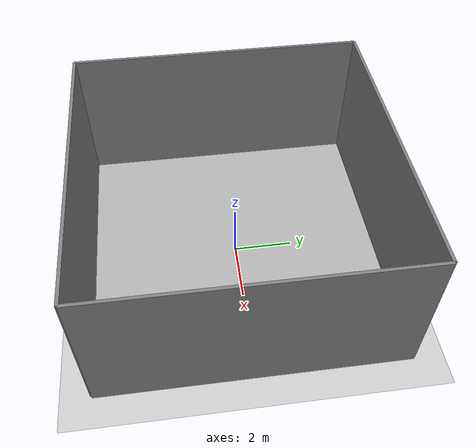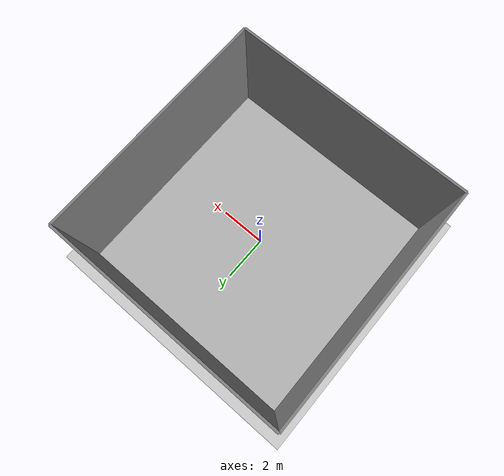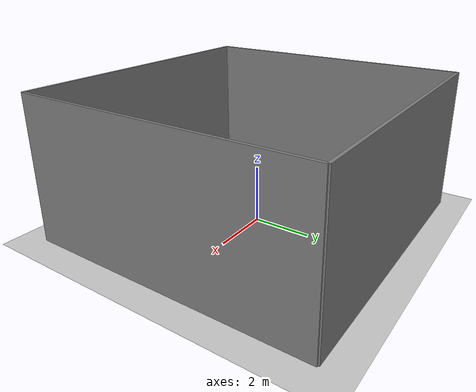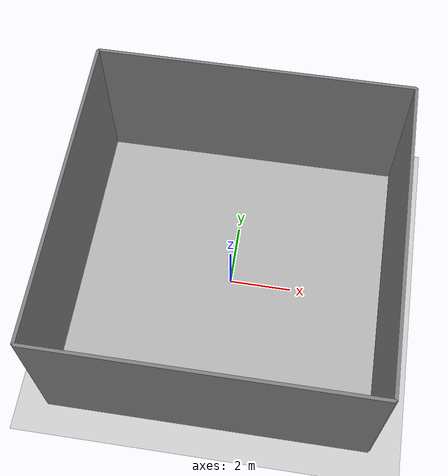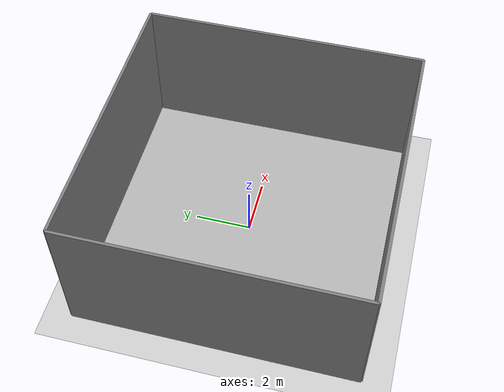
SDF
<?xml version="1.0" ?>
<sdf version="1.6">
  <world name="simple_room">
    <!-- Include the default Gazebo world -->
    <include>
      <uri>model://ground_plane</uri>
    </include>

    <include>
      <uri>model://sun</uri>
    </include>

    <!-- Physics parameters -->
    <physics name="1ms" type="ode">
      <max_step_size>0.001</max_step_size>
      <real_time_factor>1.0</real_time_factor>
      <real_time_update_rate>1000.0</real_time_update_rate>
      <gravity>0 0 -9.8</gravity>
    </physics>

    <!-- A simple room with walls -->
    <!-- Floor -->
    <model name="floor">
      <pose>0 0 0 0 0 0</pose>
      <link name="floor_link">
        <collision name="floor_collision">
          <geometry>
            <box>
              <size>10 10 0.1</size>
            </box>
          </geometry>
        </collision>
        <visual name="floor_visual">
          <geometry>
            <box>
              <size>10 10 0.1</size>
            </box>
          </geometry>
          <material>
            <ambient>0.7 0.7 0.7 1</ambient>
            <diffuse>0.7 0.7 0.7 1</diffuse>
            <specular>0.0 0.0 0.0 1</specular>
          </material>
        </visual>
        <inertial>
          <mass>1e6</mass>
          <inertia>
            <ixx>1e6</ixx>
            <ixy>0</ixy>
            <ixz>0</ixz>
            <iyy>1e6</iyy>
            <iyz>0</iyz>
            <izz>1e6</izz>
          </inertia>
        </inertial>
      </link>
    </model>

    <!-- Walls -->
    <model name="wall_1">
      <pose>-5 0 2.5 0 0 0</pose>
      <link name="wall_1_link">
        <collision name="wall_1_collision">
          <geometry>
            <box>
              <size>0.1 10 5</size>
            </box>
          </geometry>
        </collision>
        <visual name="wall_1_visual">
          <geometry>
            <box>
              <size>0.1 10 5</size>
            </box>
          </geometry>
          <material>
            <ambient>0.5 0.5 0.5 1</ambient>
            <diffuse>0.5 0.5 0.5 1</diffuse>
            <specular>0.0 0.0 0.0 1</specular>
          </material>
        </visual>
        <inertial>
          <mass>1e6</mass>
          <inertia>
            <ixx>1e6</ixx>
            <ixy>0</ixy>
            <ixz>0</ixz>
            <iyy>1e6</iyy>
            <iyz>0</iyz>
            <izz>1e6</izz>
          </inertia>
        </inertial>
      </link>
    </model>

    <model name="wall_2">
      <pose>5 0 2.5 0 0 0</pose>
      <link name="wall_2_link">
        <collision name="wall_2_collision">
          <geometry>
            <box>
              <size>0.1 10 5</size>
            </box>
          </geometry>
        </collision>
        <visual name="wall_2_visual">
          <geometry>
            <box>
              <size>0.1 10 5</size>
            </box>
          </geometry>
          <material>
            <ambient>0.5 0.5 0.5 1</ambient>
            <diffuse>0.5 0.5 0.5 1</diffuse>
            <specular>0.0 0.0 0.0 1</specular>
          </material>
        </visual>
        <inertial>
          <mass>1e6</mass>
          <inertia>
            <ixx>1e6</ixx>
            <ixy>0</ixy>
            <ixz>0</ixz>
            <iyy>1e6</iyy>
            <iyz>0</iyz>
            <izz>1e6</izz>
          </inertia>
        </inertial>
      </link>
    </model>

    <model name="wall_3">
      <pose>0 -5 2.5 0 0 1.5707</pose>
      <link name="wall_3_link">
        <collision name="wall_3_collision">
          <geometry>
            <box>
              <size>0.1 10 5</size>
            </box>
          </geometry>
        </collision>
        <visual name="wall_3_visual">
          <geometry>
            <box>
              <size>0.1 10 5</size>
            </box>
          </geometry>
          <material>
            <ambient>0.5 0.5 0.5 1</ambient>
            <diffuse>0.5 0.5 0.5 1</diffuse>
            <specular>0.0 0.0 0.0 1</specular>
          </material>
        </visual>
        <inertial>
          <mass>1e6</mass>
          <inertia>
            <ixx>1e6</ixx>
            <ixy>0</ixy>
            <ixz>0</ixz>
            <iyy>1e6</iyy>
            <iyz>0</iyz>
            <izz>1e6</izz>
          </inertia>
        </inertial>
      </link>
    </model>

    <model name="wall_4">
      <pose>0 5 2.5 0 0 1.5707</pose>
      <link name="wall_4_link">
        <collision name="wall_4_collision">
          <geometry>
            <box>
              <size>0.1 10 5</size>
            </box>
          </geometry>
        </collision>
        <visual name="wall_4_visual">
          <geometry>
            <box>
              <size>0.1 10 5</size>
            </box>
          </geometry>
          <material>
            <ambient>0.5 0.5 0.5 1</ambient>
            <diffuse>0.5 0.5 0.5 1</diffuse>
            <specular>0.0 0.0 0.0 1</specular>
          </material>
        </visual>
        <inertial>
          <mass>1e6</mass>
          <inertia>
            <ixx>1e6</ixx>
            <ixy>0</ixy>
            <ixz>0</ixz>
            <iyy>1e6</iyy>
            <iyz>0</iyz>
            <izz>1e6</izz>
          </inertia>
        </inertial>
      </link>
    </model>

  </world>
</sdf>
